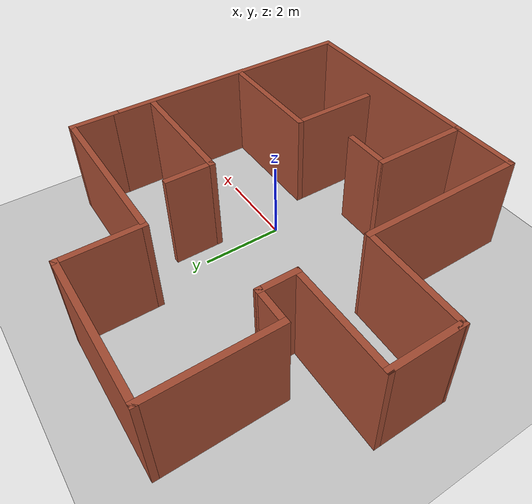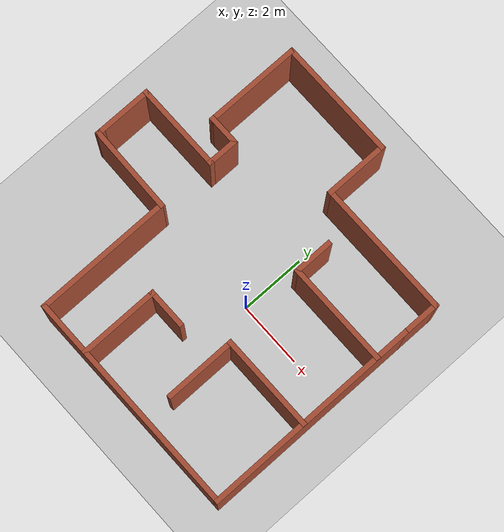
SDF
<sdf version="1.6">
 <world name="default">
  <light name="sun" type="directional">
   <pose>0 0 10 0 -0 0</pose>
   <diffuse>0.8 0.8 0.8 1</diffuse>
   <specular>0.2 0.2 0.2 1</specular>
   <attenuation>
    <range>1000</range>
    <constant>0.9</constant>
    <linear>0.01</linear>
    <quadratic>0.001</quadratic>
   </attenuation>
   <direction>-0.5 0.1 -0.9</direction>
  </light>
  <model name="ground_plane">
   <static>1</static>
   <link name="link">
    <collision name="collision">
     <geometry><plane><normal>0 0 1</normal><size>100 100</size></plane></geometry>
     <surface>
      <contact><collide_bitmask>65535</collide_bitmask></contact>
      <friction><ode><mu>100</mu><mu2>50</mu2></ode></friction>
     </surface>
    </collision>
    <visual name="visual">
     <cast_shadows>0</cast_shadows>
     <geometry><plane><normal>0 0 1</normal><size>100 100</size></plane></geometry>
     <material>
      <script><uri>file://media/materials/scripts/gazebo.material</uri><name>Gazebo/Grey</name></script>
     </material>
    </visual>
   </link>
  </model>
  <gravity>0 0 -9.8</gravity>
  <magnetic_field>6e-06 2.3e-05 -4.2e-05</magnetic_field>
  <atmosphere type="adiabatic"/>
  <physics name="default_physics" default="0" type="ode">
   <max_step_size>0.001</max_step_size>
   <real_time_factor>1</real_time_factor>
   <real_time_update_rate>1000</real_time_update_rate>
  </physics>
  <scene><ambient>0.4 0.4 0.4 1</ambient><background>0.7 0.7 0.7 1</background><shadows>1</shadows></scene>
  <audio><device>default</device></audio>
  <spherical_coordinates>
   <surface_model>EARTH_WGS84</surface_model>
   <latitude_deg>0</latitude_deg>
   <longitude_deg>0</longitude_deg>
   <elevation>0</elevation>
   <heading_deg>0</heading_deg>
  </spherical_coordinates>
  <model name="my_first_world">
   <pose>-1.15179 0.580539 0 0 -0 0</pose>
   <link name="Wall_0">
    <collision name="Wall_0_Collision">
     <geometry><box><size>4.25 0.15 2.5</size></box></geometry>
     <pose>0 0 1.25 0 -0 0</pose>
    </collision>
    <visual name="Wall_0_Visual">
     <pose>0 0 1.25 0 -0 0</pose>
     <geometry><box><size>4.25 0.15 2.5</size></box></geometry>
     <material>
      <script><uri>file://media/materials/scripts/gazebo.material</uri><name>Gazebo/Bricks</name></script>
      <ambient>1 1 1 1</ambient>
     </material>
     <meta><layer>0</layer></meta>
    </visual>
    <pose>-2.12429 -2.725 0 0 -0 -1.5708</pose>
   </link>
   <link name="Wall_1">
    <collision name="Wall_1_Collision">
     <geometry><box><size>7 0.15 2.5</size></box></geometry>
     <pose>0 0 1.25 0 -0 0</pose>
    </collision>
    <visual name="Wall_1_Visual">
     <pose>0 0 1.25 0 -0 0</pose>
     <geometry><box><size>7 0.15 2.5</size></box></geometry>
     <material>
      <script><uri>file://media/materials/scripts/gazebo.material</uri><name>Gazebo/Bricks</name></script>
      <ambient>1 1 1 1</ambient>
     </material>
     <meta><layer>0</layer></meta>
    </visual>
    <pose>1.30071 -4.775 0 0 -0 0</pose>
   </link>
   <link name="Wall_10">
    <collision name="Wall_10_Collision">
     <geometry><box><size>2.75 0.15 2.5</size></box></geometry>
     <pose>0 0 1.25 0 -0 0</pose>
    </collision>
    <visual name="Wall_10_Visual">
     <pose>0 0 1.25 0 -0 0</pose>
     <geometry><box><size>2.75 0.15 2.5</size></box></geometry>
     <material>
      <script><uri>file://media/materials/scripts/gazebo.material</uri><name>Gazebo/Bricks</name></script>
      <ambient>1 1 1 1</ambient>
     </material>
     <meta><layer>0</layer></meta>
    </visual>
    <pose>-3.42429 1.075 0 0 -0 3.14159</pose>
   </link>
   <link name="Wall_11">
    <collision name="Wall_11_Collision">
     <geometry><box><size>1.75 0.15 2.5</size></box></geometry>
     <pose>0 0 1.25 0 -0 0</pose>
    </collision>
    <visual name="Wall_11_Visual">
     <pose>0 0 1.25 0 -0 0</pose>
     <geometry><box><size>1.75 0.15 2.5</size></box></geometry>
     <material>
      <script><uri>file://media/materials/scripts/gazebo.material</uri><name>Gazebo/Bricks</name></script>
      <ambient>1 1 1 1</ambient>
     </material>
     <meta><layer>0</layer></meta>
    </visual>
    <pose>-4.72429 0.275 0 0 -0 -1.5708</pose>
   </link>
   <link name="Wall_12">
    <collision name="Wall_12_Collision">
     <geometry><box><size>0.25 0.15 2.5</size></box></geometry>
     <pose>0 0 1.25 0 -0 0</pose>
    </collision>
    <visual name="Wall_12_Visual">
     <pose>0 0 1.25 0 -0 0</pose>
     <geometry><box><size>0.25 0.15 2.5</size></box></geometry>
     <material>
      <script><uri>file://media/materials/scripts/gazebo.material</uri><name>Gazebo/Bricks</name></script>
      <ambient>1 1 1 1</ambient>
     </material>
     <meta><layer>0</layer></meta>
    </visual>
    <pose>-4.72429 -0.575 0 0 -0 -1.5708</pose>
   </link>
   <link name="Wall_13">
    <collision name="Wall_13_Collision">
     <geometry><box><size>2.75048 0.15 2.5</size></box></geometry>
     <pose>0 0 1.25 0 -0 0</pose>
    </collision>
    <visual name="Wall_13_Visual">
     <pose>0 0 1.25 0 -0 0</pose>
     <geometry><box><size>2.75048 0.15 2.5</size></box></geometry>
     <material>
      <script><uri>file://media/materials/scripts/gazebo.material</uri><name>Gazebo/Bricks</name></script>
      <ambient>1 1 1 1</ambient>
     </material>
     <meta><layer>0</layer></meta>
    </visual>
    <pose>-3.42429 -0.65 0 0 -0 -0.019228</pose>
   </link>
   <link name="Wall_15">
    <collision name="Wall_15_Collision">
     <geometry><box><size>3.25 0.15 2.5</size></box></geometry>
     <pose>0 0 1.25 0 -0 0</pose>
    </collision>
    <visual name="Wall_15_Visual">
     <pose>0 0 1.25 0 -0 0</pose>
     <geometry><box><size>3.25 0.15 2.5</size></box></geometry>
     <material>
      <script><uri>file://media/materials/scripts/gazebo.material</uri><name>Gazebo/Bricks</name></script>
      <ambient>1 1 1 1</ambient>
     </material>
     <meta><layer>0</layer></meta>
    </visual>
    <pose>3.16782 0.834303 0 0 -0 3.14159</pose>
   </link>
   <link name="Wall_16">
    <collision name="Wall_16_Collision">
     <geometry><box><size>1.25 0.15 2.5</size></box></geometry>
     <pose>0 0 1.25 0 -0 0</pose>
    </collision>
    <visual name="Wall_16_Visual">
     <pose>0 0 1.25 0 -0 0</pose>
     <geometry><box><size>1.25 0.15 2.5</size></box></geometry>
     <material>
      <script><uri>file://media/materials/scripts/gazebo.material</uri><name>Gazebo/Bricks</name></script>
      <ambient>1 1 1 1</ambient>
     </material>
     <meta><layer>0</layer></meta>
    </visual>
    <pose>1.61782 1.3843 0 0 -0 1.5708</pose>
   </link>
   <link name="Wall_18">
    <collision name="Wall_18_Collision">
     <geometry><box><size>3 0.15 2.5</size></box></geometry>
     <pose>0 0 1.25 0 -0 0</pose>
    </collision>
    <visual name="Wall_18_Visual">
     <pose>0 0 1.25 0 -0 0</pose>
     <geometry><box><size>3 0.15 2.5</size></box></geometry>
     <material>
      <script><uri>file://media/materials/scripts/gazebo.material</uri><name>Gazebo/Bricks</name></script>
      <ambient>1 1 1 1</ambient>
     </material>
     <meta><layer>0</layer></meta>
    </visual>
    <pose>3.29282 -1.7709 0 0 -0 3.14159</pose>
   </link>
   <link name="Wall_19">
    <collision name="Wall_19_Collision">
     <geometry><box><size>2.25 0.15 2.5</size></box></geometry>
     <pose>0 0 1.25 0 -0 0</pose>
    </collision>
    <visual name="Wall_19_Visual">
     <pose>0 0 1.25 0 -0 0</pose>
     <geometry><box><size>2.25 0.15 2.5</size></box></geometry>
     <material>
      <script><uri>file://media/materials/scripts/gazebo.material</uri><name>Gazebo/Bricks</name></script>
      <ambient>1 1 1 1</ambient>
     </material>
     <meta><layer>0</layer></meta>
    </visual>
    <pose>1.86782 -2.8209 0 0 -0 -1.5708</pose>
   </link>
   <link name="Wall_2">
    <collision name="Wall_2_Collision">
     <geometry><box><size>6.75 0.15 2.5</size></box></geometry>
     <pose>0 0 1.25 0 -0 0</pose>
    </collision>
    <visual name="Wall_2_Visual">
     <pose>0 0 1.25 0 -0 0</pose>
     <geometry><box><size>6.75 0.15 2.5</size></box></geometry>
     <material>
      <script><uri>file://media/materials/scripts/gazebo.material</uri><name>Gazebo/Bricks</name></script>
      <ambient>1 1 1 1</ambient>
     </material>
     <meta><layer>0</layer></meta>
    </visual>
    <pose>4.72571 -1.475 0 0 -0 1.5708</pose>
   </link>
   <link name="Wall_23">
    <collision name="Wall_23_Collision">
     <geometry><box><size>2.5 0.15 2.5</size></box></geometry>
     <pose>0 0 1.25 0 -0 0</pose>
    </collision>
    <visual name="Wall_23_Visual">
     <pose>0 0 1.25 0 -0 0</pose>
     <geometry><box><size>2.5 0.15 2.5</size></box></geometry>
     <material>
      <script><uri>file://media/materials/scripts/gazebo.material</uri><name>Gazebo/Bricks</name></script>
      <ambient>1 1 1 1</ambient>
     </material>
     <meta><layer>0</layer></meta>
    </visual>
    <pose>-0.492589 -3.59885 0 0 -0 1.5708</pose>
   </link>
   <link name="Wall_25">
    <collision name="Wall_25_Collision">
     <geometry><box><size>1.25 0.15 2.5</size></box></geometry>
     <pose>0 0 1.25 0 -0 0</pose>
    </collision>
    <visual name="Wall_25_Visual">
     <pose>0 0 1.25 0 -0 0</pose>
     <geometry><box><size>1.25 0.15 2.5</size></box></geometry>
     <material>
      <script><uri>file://media/materials/scripts/gazebo.material</uri><name>Gazebo/Bricks</name></script>
      <ambient>1 1 1 1</ambient>
     </material>
     <meta><layer>0</layer></meta>
    </visual>
    <pose>0.057411 -2.42385 0 0 -0 0</pose>
   </link>
   <link name="Wall_3">
    <collision name="Wall_3_Collision">
     <geometry><box><size>1.25 0.15 2.5</size></box></geometry>
     <pose>0 0 1.25 0 -0 0</pose>
    </collision>
    <visual name="Wall_3_Visual">
     <pose>0 0 1.25 0 -0 0</pose>
     <geometry><box><size>1.25 0.15 2.5</size></box></geometry>
     <material>
      <script><uri>file://media/materials/scripts/gazebo.material</uri><name>Gazebo/Bricks</name></script>
      <ambient>1 1 1 1</ambient>
     </material>
     <meta><layer>0</layer></meta>
    </visual>
    <pose>4.72571 2.375 0 0 -0 1.5708</pose>
   </link>
   <link name="Wall_4">
    <collision name="Wall_4_Collision">
     <geometry><box><size>4.25 0.15 2.5</size></box></geometry>
     <pose>0 0 1.25 0 -0 0</pose>
    </collision>
    <visual name="Wall_4_Visual">
     <pose>0 0 1.25 0 -0 0</pose>
     <geometry><box><size>4.25 0.15 2.5</size></box></geometry>
     <material>
      <script><uri>file://media/materials/scripts/gazebo.material</uri><name>Gazebo/Bricks</name></script>
      <ambient>1 1 1 1</ambient>
     </material>
     <meta><layer>0</layer></meta>
    </visual>
    <pose>2.67571 2.925 0 0 -0 3.14159</pose>
   </link>
   <link name="Wall_5">
    <collision name="Wall_5_Collision">
     <geometry><box><size>2 0.15 2.5</size></box></geometry>
     <pose>0 0 1.25 0 -0 0</pose>
    </collision>
    <visual name="Wall_5_Visual">
     <pose>0 0 1.25 0 -0 0</pose>
     <geometry><box><size>2 0.15 2.5</size></box></geometry>
     <material>
      <script><uri>file://media/materials/scripts/gazebo.material</uri><name>Gazebo/Bricks</name></script>
      <ambient>1 1 1 1</ambient>
     </material>
     <meta><layer>0</layer></meta>
    </visual>
    <pose>0.625714 3.85 0 0 -0 1.5708</pose>
   </link>
   <link name="Wall_6">
    <collision name="Wall_6_Collision">
     <geometry><box><size>3.75 0.15 2.5</size></box></geometry>
     <pose>0 0 1.25 0 -0 0</pose>
    </collision>
    <visual name="Wall_6_Visual">
     <pose>0 0 1.25 0 -0 0</pose>
     <geometry><box><size>3.75 0.15 2.5</size></box></geometry>
     <material>
      <script><uri>file://media/materials/scripts/gazebo.material</uri><name>Gazebo/Bricks</name></script>
      <ambient>1 1 1 1</ambient>
     </material>
     <meta><layer>0</layer></meta>
    </visual>
    <pose>-1.17429 4.775 0 0 -0 3.14159</pose>
   </link>
   <link name="Wall_7">
    <collision name="Wall_7_Collision">
     <geometry><box><size>3 0.15 2.5</size></box></geometry>
     <pose>0 0 1.25 0 -0 0</pose>
    </collision>
    <visual name="Wall_7_Visual">
     <pose>0 0 1.25 0 -0 0</pose>
     <geometry><box><size>3 0.15 2.5</size></box></geometry>
     <material>
      <script><uri>file://media/materials/scripts/gazebo.material</uri><name>Gazebo/Bricks</name></script>
      <ambient>1 1 1 1</ambient>
     </material>
     <meta><layer>0</layer></meta>
    </visual>
    <pose>-2.97429 3.35 0 0 -0 -1.5708</pose>
   </link>
   <link name="Wall_8">
    <collision name="Wall_8_Collision">
     <geometry><box><size>1 0.15 2.5</size></box></geometry>
     <pose>0 0 1.25 0 -0 0</pose>
    </collision>
    <visual name="Wall_8_Visual">
     <pose>0 0 1.25 0 -0 0</pose>
     <geometry><box><size>1 0.15 2.5</size></box></geometry>
     <material>
      <script><uri>file://media/materials/scripts/gazebo.material</uri><name>Gazebo/Bricks</name></script>
      <ambient>1 1 1 1</ambient>
     </material>
     <meta><layer>0</layer></meta>
    </visual>
    <pose>-2.54929 1.925 0 0 -0 0</pose>
   </link>
   <link name="Wall_9">
    <collision name="Wall_9_Collision">
     <geometry><box><size>1 0.15 2.5</size></box></geometry>
     <pose>0 0 1.25 0 -0 0</pose>
    </collision>
    <visual name="Wall_9_Visual">
     <pose>0 0 1.25 0 -0 0</pose>
     <geometry><box><size>1 0.15 2.5</size></box></geometry>
     <material>
      <script><uri>file://media/materials/scripts/gazebo.material</uri><name>Gazebo/Bricks</name></script>
      <ambient>1 1 1 1</ambient>
     </material>
     <meta><layer>0</layer></meta>
    </visual>
    <pose>-2.12429 1.5 0 0 -0 -1.5708</pose>
   </link>
   <static>1</static>
  </model>
 </world>
</sdf>
